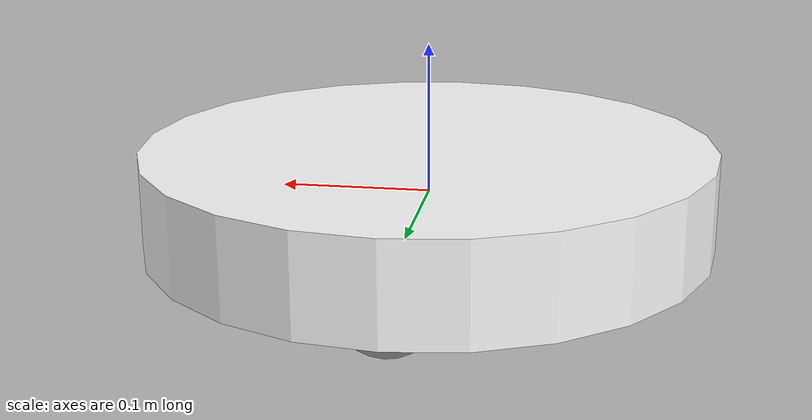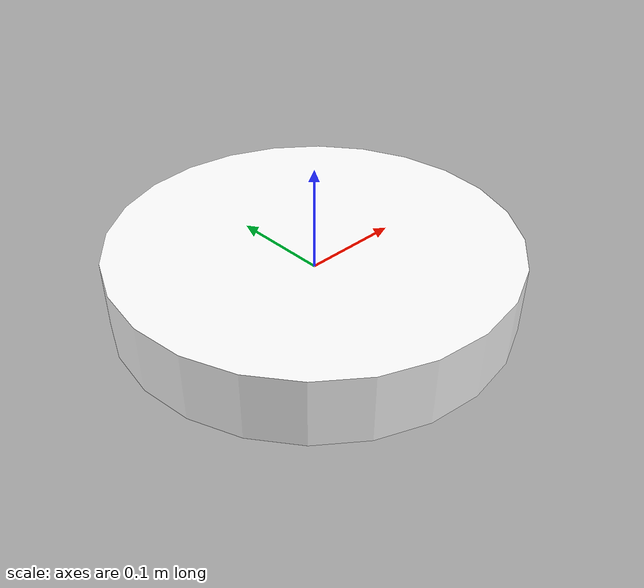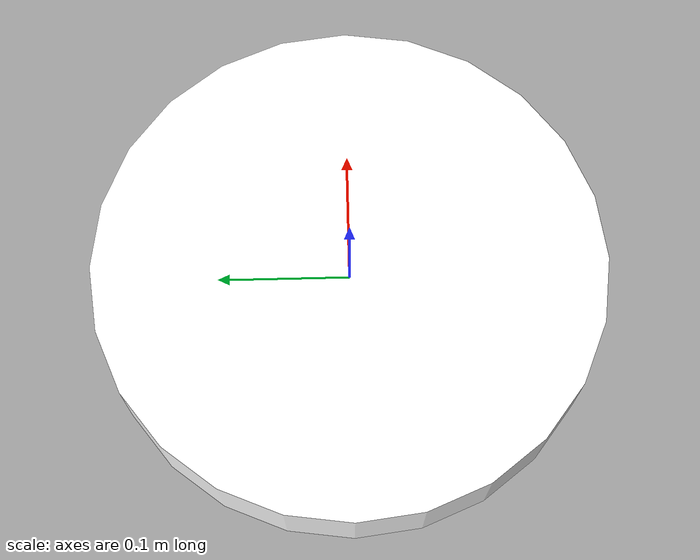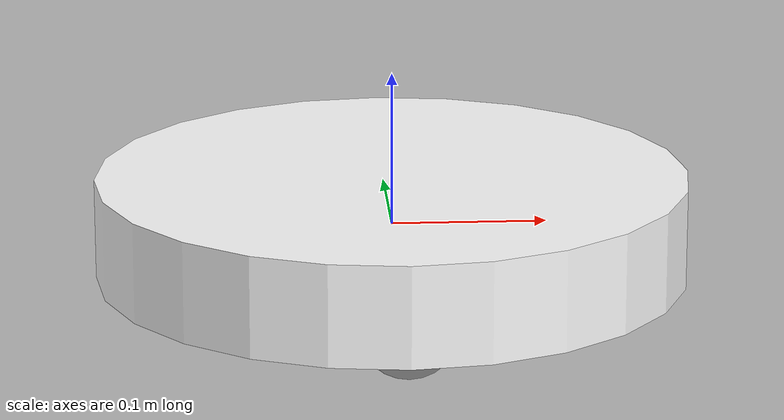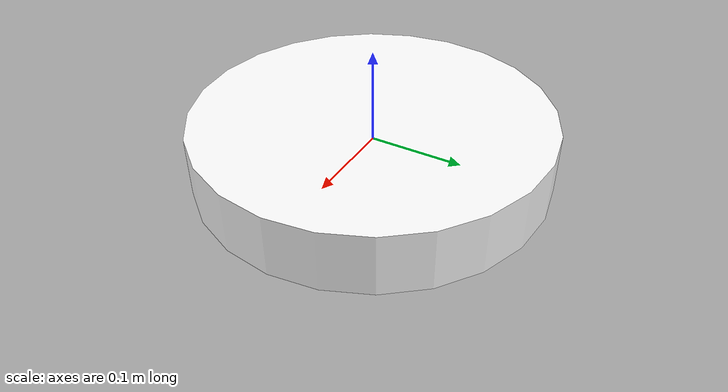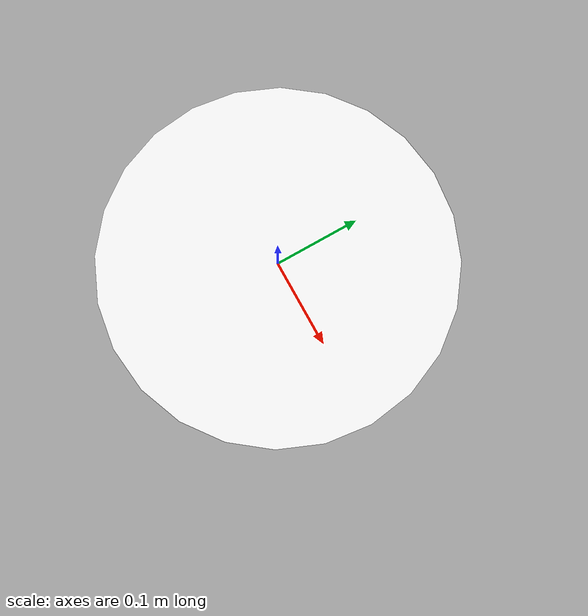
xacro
<?xml version="1.0"?>
<!-- Called by 2wdc1_description.launch.py -->
<robot name="mtbc1" xmlns:xacro="http://ros.org/wiki/xacro">

  <!-- Define robot constants -->
  <xacro:property name="base_width" value="0.31"/>
  <xacro:property name="base_length" value="0.42"/>
  <xacro:property name="base_height" value="0.18"/>

  <xacro:property name="c1base_len" value="0.065"/>
  <xacro:property name="c1base_rad" value="0.1915"/>

  <xacro:property name="wheel_radius" value="0.10"/>
  <xacro:property name="wheel_width" value="0.04"/>
  <xacro:property name="wheel_ygap" value="0.025"/>
  <xacro:property name="wheel_zoff" value="0.05"/>
  <xacro:property name="wheel_xoff" value="0.12"/>

  <xacro:property name="c1wheel_radius" value="0.0305"/>
  <xacro:property name="c1wheel_width" value="0.027"/>
  <xacro:property name="c1wheel_ygap" value="0.033"/>
  <xacro:property name="c1wheel_zoff" value="0.015"/>
  <xacro:property name="c1wheel_xoff" value="0.00"/>

  <!-- Compute base_link to base_footprint_zoff from wheel radius & zoffset -->
  <xacro:property name="base_to_footprint_zoff" value="${(c1wheel_radius+c1wheel_zoff)}"/>

  <xacro:property name="c1fcaster_rad" value="0.00115"/>
  <xacro:property name="c1rcaster_rad" value="0.0090"/>
  <xacro:property name="c1fcaster_xoff" value="0.123"/>
  <xacro:property name="c1rcaster_xoff" value="0.145"/>

  <!--IMU Properties-->
  <xacro:property name="imu_zoff" value="0.266"/>

  <!-- Robot Base -->
  <link name="base_link">
    <visual>
      <geometry>
        <cylinder length="${c1base_len}" radius="${c1base_rad}"/>
      </geometry>
      <material name="White">
        <color rgba="1.0 1.0 1.0 1.0"/>
      </material>
    </visual>
  </link>

   <!-- Robot Footprint -->
   <link name="base_footprint"/>

  <joint name="base_joint" type="fixed">
    <parent link="base_link"/>
    <child link="base_footprint"/>
    <origin xyz="0.0 0.0 ${-(c1wheel_radius+c1wheel_zoff)}" rpy="0 0 0"/>
  </joint>

  <!-- Wheels -->
  <xacro:macro name="wheel" params="prefix x_reflect y_reflect">
    <link name="${prefix}_link">
      <visual>
        <origin xyz="0 0 0" rpy="${pi/2} 0 0"/>
        <geometry>
            <cylinder radius="${c1wheel_radius}" length="${c1wheel_width}"/>
        </geometry>
        <material name="Gray">
          <color rgba="0.5 0.5 0.5 1.0"/>
        </material>
      </visual>
    </link>

    <joint name="${prefix}_joint" type="continuous">
      <parent link="base_link"/>
      <child link="${prefix}_link"/>
      <origin xyz="${x_reflect*c1wheel_xoff} ${y_reflect*(c1base_rad-c1wheel_ygap)} ${-c1wheel_zoff}" rpy="0 0 0"/>
      <axis xyz="0 1 0"/>
    </joint>
  </xacro:macro>

  <xacro:wheel prefix="drivewhl_l" x_reflect="-1" y_reflect="1" />
  <xacro:wheel prefix="drivewhl_r" x_reflect="-1" y_reflect="-1" />

  <!-- Caster Front Wheel -->
  <link name="front_caster">
    <visual>
      <geometry>
        <sphere radius="${(c1wheel_radius+c1wheel_zoff-(c1base_len/2))}"/>
      </geometry>
        <material name="White">
        <color rgba="1.0 1.0 1.0 1.0"/>
      </material>
    </visual>
  </link>

  <joint name="casterf_joint" type="fixed">
    <parent link="base_link"/>
    <child link="front_caster"/>
    <origin xyz="${c1fcaster_xoff} 0.0 ${-(c1base_len/2)}" rpy="0 0 0"/>
  </joint>

  <!-- Caster Rear Wheel -->
  <link name="rear_caster">
    <visual>
      <geometry>
        <sphere radius="${(c1wheel_radius+c1wheel_zoff-(c1base_len/2))}"/>
      </geometry>
        <material name="White">
        <color rgba="1.0 1.0 1.0 1.0"/>
      </material>
    </visual>
  </link>

  <joint name="casterr_joint" type="fixed">
    <parent link="base_link"/>
    <child link="rear_caster"/>
    <origin xyz="${-c1rcaster_xoff} 0.0 ${-(c1base_len/2)}" rpy="0 0 0"/>
  </joint>

</robot>
